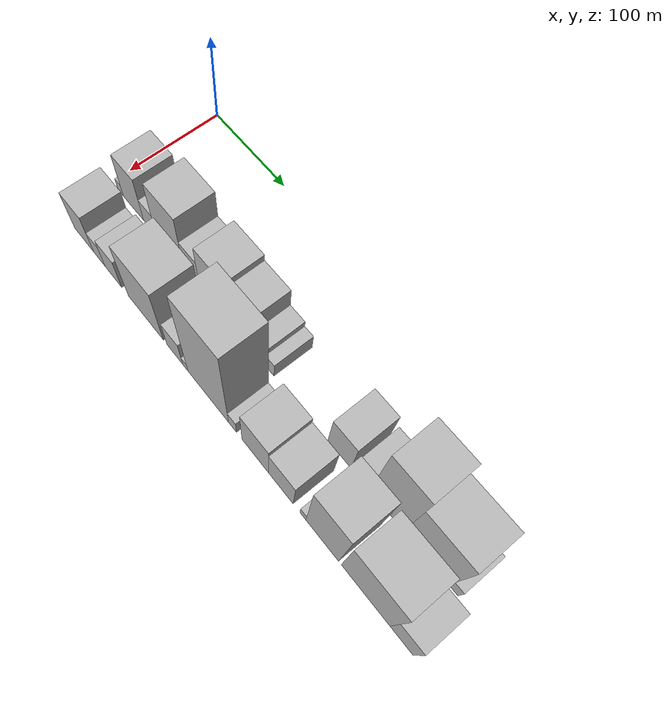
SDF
<sdf version="1.6">
 <world name="default">
  <model name="building_15">
   <static>1</static>
   <pose>100.0000 15.0990 0 0.000000 0.000000 0.000000</pose>
   <link name="link">
    <pose>0 0 9.00 0 0 0</pose>
    <collision name="collision"><geometry><box><size>40.0000 8.5355 18.0000</size></box></geometry></collision>
    <visual name="visual">
     <cast_shadows>0</cast_shadows>
     <geometry><box><size>40.0000 8.5355 18.0000</size></box></geometry>
     <material>
      <script>
       <uri>model://HANNAS_wall/materials/scripts</uri>
       <uri>model://HANNAS_wall/materials/textures</uri>
       <name>vrc/HANNAS_wall</name>
      </script>
     </material>
    </visual>
   </link>
  </model>
  <model name="building_16">
   <static>1</static>
   <pose>100.0000 35.2143 0 0.000000 0.000000 0.000000</pose>
   <link name="link">
    <pose>0 0 31.50 0 0 0</pose>
    <collision name="collision"><geometry><box><size>40.0000 31.6950 63.0000</size></box></geometry></collision>
    <visual name="visual">
     <cast_shadows>0</cast_shadows>
     <geometry><box><size>40.0000 31.6950 63.0000</size></box></geometry>
     <material>
      <script>
       <uri>model://HANNAS_wall/materials/scripts</uri>
       <uri>model://HANNAS_wall/materials/textures</uri>
       <name>vrc/HANNAS_wall</name>
      </script>
     </material>
    </visual>
   </link>
  </model>
  <model name="building_17">
   <static>1</static>
   <pose>100.0000 60.7238 0 0.000000 0.000000 0.000000</pose>
   <link name="link">
    <pose>0 0 16.50 0 0 0</pose>
    <collision name="collision"><geometry><box><size>40.0000 19.3241 33.0000</size></box></geometry></collision>
    <visual name="visual">
     <cast_shadows>0</cast_shadows>
     <geometry><box><size>40.0000 19.3241 33.0000</size></box></geometry>
     <material>
      <script>
       <uri>model://HANNAS_wall/materials/scripts</uri>
       <uri>model://HANNAS_wall/materials/textures</uri>
       <name>vrc/HANNAS_wall</name>
      </script>
     </material>
    </visual>
   </link>
  </model>
  <model name="building_18">
   <static>1</static>
   <pose>100.0000 90.9148 0 0.000000 0.000000 0.000000</pose>
   <link name="link">
    <pose>0 0 40.50 0 0 0</pose>
    <collision name="collision"><geometry><box><size>40.0000 41.0580 81.0000</size></box></geometry></collision>
    <visual name="visual">
     <cast_shadows>0</cast_shadows>
     <geometry><box><size>40.0000 41.0580 81.0000</size></box></geometry>
     <material>
      <script>
       <uri>model://HANNAS_wall/materials/scripts</uri>
       <uri>model://HANNAS_wall/materials/textures</uri>
       <name>vrc/HANNAS_wall</name>
      </script>
     </material>
    </visual>
   </link>
  </model>
  <model name="building_19">
   <static>1</static>
   <pose>100.0000 123.1200 0 0.000000 0.000000 0.000000</pose>
   <link name="link">
    <pose>0 0 22.50 0 0 0</pose>
    <collision name="collision"><geometry><box><size>40.0000 23.3524 45.0000</size></box></geometry></collision>
    <visual name="visual">
     <cast_shadows>0</cast_shadows>
     <geometry><box><size>40.0000 23.3524 45.0000</size></box></geometry>
     <material>
      <script>
       <uri>model://HANNAS_wall/materials/scripts</uri>
       <uri>model://HANNAS_wall/materials/textures</uri>
       <name>vrc/HANNAS_wall</name>
      </script>
     </material>
    </visual>
   </link>
  </model>
  <model name="building_20">
   <static>1</static>
   <pose>100.0000 154.1357 0 0.000000 0.000000 0.000000</pose>
   <link name="link">
    <pose>0 0 34.50 0 0 0</pose>
    <collision name="collision"><geometry><box><size>40.0000 38.6789 69.0000</size></box></geometry></collision>
    <visual name="visual">
     <cast_shadows>0</cast_shadows>
     <geometry><box><size>40.0000 38.6789 69.0000</size></box></geometry>
     <material>
      <script>
       <uri>model://HANNAS_wall/materials/scripts</uri>
       <uri>model://HANNAS_wall/materials/textures</uri>
       <name>vrc/HANNAS_wall</name>
      </script>
     </material>
    </visual>
   </link>
  </model>
  <model name="building_21">
   <static>1</static>
   <pose>100.0000 189.8916 0 0.000000 0.000000 0.000000</pose>
   <link name="link">
    <pose>0 0 30.00 0 0 0</pose>
    <collision name="collision"><geometry><box><size>40.0000 32.8330 60.0000</size></box></geometry></collision>
    <visual name="visual">
     <cast_shadows>0</cast_shadows>
     <geometry><box><size>40.0000 32.8330 60.0000</size></box></geometry>
     <material>
      <script>
       <uri>model://HANNAS_wall/materials/scripts</uri>
       <uri>model://HANNAS_wall/materials/textures</uri>
       <name>vrc/HANNAS_wall</name>
      </script>
     </material>
    </visual>
   </link>
  </model>
  <model name="building_22">
   <static>1</static>
   <pose>100.0000 215.5773 0 0.000000 0.000000 0.000000</pose>
   <link name="link">
    <pose>0 0 16.50 0 0 0</pose>
    <collision name="collision"><geometry><box><size>40.0000 18.5383 33.0000</size></box></geometry></collision>
    <visual name="visual">
     <cast_shadows>0</cast_shadows>
     <geometry><box><size>40.0000 18.5383 33.0000</size></box></geometry>
     <material>
      <script>
       <uri>model://HANNAS_wall/materials/scripts</uri>
       <uri>model://HANNAS_wall/materials/textures</uri>
       <name>vrc/HANNAS_wall</name>
      </script>
     </material>
    </visual>
   </link>
  </model>
  <model name="building_23">
   <static>1</static>
   <pose>100.0000 230.4463 0 0.000000 0.000000 0.000000</pose>
   <link name="link">
    <pose>0 0 12.00 0 0 0</pose>
    <collision name="collision"><geometry><box><size>40.0000 11.1996 24.0000</size></box></geometry></collision>
    <visual name="visual">
     <cast_shadows>0</cast_shadows>
     <geometry><box><size>40.0000 11.1996 24.0000</size></box></geometry>
     <material>
      <script>
       <uri>model://HANNAS_wall/materials/scripts</uri>
       <uri>model://HANNAS_wall/materials/textures</uri>
       <name>vrc/HANNAS_wall</name>
      </script>
     </material>
    </visual>
   </link>
  </model>
  <model name="building_24">
   <static>1</static>
   <pose>100.0000 317.1471 0 0.000000 0.000000 0.000000</pose>
   <link name="link">
    <pose>0 0 27.00 0 0 0</pose>
    <collision name="collision"><geometry><box><size>40.0000 27.4007 54.0000</size></box></geometry></collision>
    <visual name="visual">
     <cast_shadows>0</cast_shadows>
     <geometry><box><size>40.0000 27.4007 54.0000</size></box></geometry>
     <material>
      <script>
       <uri>model://HANNAS_wall/materials/scripts</uri>
       <uri>model://HANNAS_wall/materials/textures</uri>
       <name>vrc/HANNAS_wall</name>
      </script>
     </material>
    </visual>
   </link>
  </model>
  <model name="building_25">
   <static>1</static>
   <pose>100.0000 343.0963 0 0.000000 0.000000 0.000000</pose>
   <link name="link">
    <pose>0 0 18.00 0 0 0</pose>
    <collision name="collision"><geometry><box><size>40.0000 18.4977 36.0000</size></box></geometry></collision>
    <visual name="visual">
     <cast_shadows>0</cast_shadows>
     <geometry><box><size>40.0000 18.4977 36.0000</size></box></geometry>
     <material>
      <script>
       <uri>model://HANNAS_wall/materials/scripts</uri>
       <uri>model://HANNAS_wall/materials/textures</uri>
       <name>vrc/HANNAS_wall</name>
      </script>
     </material>
    </visual>
   </link>
  </model>
  <model name="building_26">
   <static>1</static>
   <pose>100.0000 371.6113 0 0.000000 0.000000 0.000000</pose>
   <link name="link">
    <pose>0 0 57.00 0 0 0</pose>
    <collision name="collision"><geometry><box><size>40.0000 38.5324 114.0000</size></box></geometry></collision>
    <visual name="visual">
     <cast_shadows>0</cast_shadows>
     <geometry><box><size>40.0000 38.5324 114.0000</size></box></geometry>
     <material>
      <script>
       <uri>model://HANNAS_wall/materials/scripts</uri>
       <uri>model://HANNAS_wall/materials/textures</uri>
       <name>vrc/HANNAS_wall</name>
      </script>
     </material>
    </visual>
   </link>
  </model>
  <model name="building_27">
   <static>1</static>
   <pose>100.0000 415.0386 0 0.000000 0.000000 0.000000</pose>
   <link name="link">
    <pose>0 0 43.50 0 0 0</pose>
    <collision name="collision"><geometry><box><size>40.0000 48.3222 87.0000</size></box></geometry></collision>
    <visual name="visual">
     <cast_shadows>0</cast_shadows>
     <geometry><box><size>40.0000 48.3222 87.0000</size></box></geometry>
     <material>
      <script>
       <uri>model://HANNAS_wall/materials/scripts</uri>
       <uri>model://HANNAS_wall/materials/textures</uri>
       <name>vrc/HANNAS_wall</name>
      </script>
     </material>
    </visual>
   </link>
  </model>
  <model name="building_28">
   <static>1</static>
   <pose>100.0000 444.0721 0 0.000000 0.000000 0.000000</pose>
   <link name="link">
    <pose>0 0 10.50 0 0 0</pose>
    <collision name="collision"><geometry><box><size>40.0000 9.7447 21.0000</size></box></geometry></collision>
    <visual name="visual">
     <cast_shadows>0</cast_shadows>
     <geometry><box><size>40.0000 9.7447 21.0000</size></box></geometry>
     <material>
      <script>
       <uri>model://HANNAS_wall/materials/scripts</uri>
       <uri>model://HANNAS_wall/materials/textures</uri>
       <name>vrc/HANNAS_wall</name>
      </script>
     </material>
    </visual>
   </link>
  </model>
  <model name="building_40">
   <static>1</static>
   <pose>152.0000 35.3569 0 0.000000 0.000000 0.000000</pose>
   <link name="link">
    <pose>0 0 28.50 0 0 0</pose>
    <collision name="collision"><geometry><box><size>40.0000 30.5609 57.0000</size></box></geometry></collision>
    <visual name="visual">
     <cast_shadows>0</cast_shadows>
     <geometry><box><size>40.0000 30.5609 57.0000</size></box></geometry>
     <material>
      <script>
       <uri>model://HANNAS_wall/materials/scripts</uri>
       <uri>model://HANNAS_wall/materials/textures</uri>
       <name>vrc/HANNAS_wall</name>
      </script>
     </material>
    </visual>
   </link>
  </model>
  <model name="building_41">
   <static>1</static>
   <pose>152.0000 59.5287 0 0.000000 0.000000 0.000000</pose>
   <link name="link">
    <pose>0 0 16.50 0 0 0</pose>
    <collision name="collision"><geometry><box><size>40.0000 17.7826 33.0000</size></box></geometry></collision>
    <visual name="visual">
     <cast_shadows>0</cast_shadows>
     <geometry><box><size>40.0000 17.7826 33.0000</size></box></geometry>
     <material>
      <script>
       <uri>model://HANNAS_wall/materials/scripts</uri>
       <uri>model://HANNAS_wall/materials/textures</uri>
       <name>vrc/HANNAS_wall</name>
      </script>
     </material>
    </visual>
   </link>
  </model>
  <model name="building_42">
   <static>1</static>
   <pose>152.0000 81.1383 0 0.000000 0.000000 0.000000</pose>
   <link name="link">
    <pose>0 0 22.50 0 0 0</pose>
    <collision name="collision"><geometry><box><size>40.0000 25.4367 45.0000</size></box></geometry></collision>
    <visual name="visual">
     <cast_shadows>0</cast_shadows>
     <geometry><box><size>40.0000 25.4367 45.0000</size></box></geometry>
     <material>
      <script>
       <uri>model://HANNAS_wall/materials/scripts</uri>
       <uri>model://HANNAS_wall/materials/textures</uri>
       <name>vrc/HANNAS_wall</name>
      </script>
     </material>
    </visual>
   </link>
  </model>
  <model name="building_43">
   <static>1</static>
   <pose>152.0000 129.4880 0 0.000000 0.000000 0.000000</pose>
   <link name="link">
    <pose>0 0 43.50 0 0 0</pose>
    <collision name="collision"><geometry><box><size>40.0000 51.2626 87.0000</size></box></geometry></collision>
    <visual name="visual">
     <cast_shadows>0</cast_shadows>
     <geometry><box><size>40.0000 51.2626 87.0000</size></box></geometry>
     <material>
      <script>
       <uri>model://HANNAS_wall/materials/scripts</uri>
       <uri>model://HANNAS_wall/materials/textures</uri>
       <name>vrc/HANNAS_wall</name>
      </script>
     </material>
    </visual>
   </link>
  </model>
  <model name="building_44">
   <static>1</static>
   <pose>152.0000 171.1954 0 0.000000 0.000000 0.000000</pose>
   <link name="link">
    <pose>0 0 21.00 0 0 0</pose>
    <collision name="collision"><geometry><box><size>40.0000 22.1522 42.0000</size></box></geometry></collision>
    <visual name="visual">
     <cast_shadows>0</cast_shadows>
     <geometry><box><size>40.0000 22.1522 42.0000</size></box></geometry>
     <material>
      <script>
       <uri>model://HANNAS_wall/materials/scripts</uri>
       <uri>model://HANNAS_wall/materials/textures</uri>
       <name>vrc/HANNAS_wall</name>
      </script>
     </material>
    </visual>
   </link>
  </model>
  <model name="building_45">
   <static>1</static>
   <pose>152.0000 185.9325 0 0.000000 0.000000 0.000000</pose>
   <link name="link">
    <pose>0 0 7.50 0 0 0</pose>
    <collision name="collision"><geometry><box><size>40.0000 7.3219 15.0000</size></box></geometry></collision>
    <visual name="visual">
     <cast_shadows>0</cast_shadows>
     <geometry><box><size>40.0000 7.3219 15.0000</size></box></geometry>
     <material>
      <script>
       <uri>model://HANNAS_wall/materials/scripts</uri>
       <uri>model://HANNAS_wall/materials/textures</uri>
       <name>vrc/HANNAS_wall</name>
      </script>
     </material>
    </visual>
   </link>
  </model>
  <model name="building_46">
   <static>1</static>
   <pose>152.0000 216.7526 0 0.000000 0.000000 0.000000</pose>
   <link name="link">
    <pose>0 0 72.00 0 0 0</pose>
    <collision name="collision"><geometry><box><size>40.0000 54.3182 144.0000</size></box></geometry></collision>
    <visual name="visual">
     <cast_shadows>0</cast_shadows>
     <geometry><box><size>40.0000 54.3182 144.0000</size></box></geometry>
     <material>
      <script>
       <uri>model://HANNAS_wall/materials/scripts</uri>
       <uri>model://HANNAS_wall/materials/textures</uri>
       <name>vrc/HANNAS_wall</name>
      </script>
     </material>
    </visual>
   </link>
  </model>
  <model name="building_47">
   <static>1</static>
   <pose>152.0000 249.0965 0 0.000000 0.000000 0.000000</pose>
   <link name="link">
    <pose>0 0 12.00 0 0 0</pose>
    <collision name="collision"><geometry><box><size>40.0000 10.3696 24.0000</size></box></geometry></collision>
    <visual name="visual">
     <cast_shadows>0</cast_shadows>
     <geometry><box><size>40.0000 10.3696 24.0000</size></box></geometry>
     <material>
      <script>
       <uri>model://HANNAS_wall/materials/scripts</uri>
       <uri>model://HANNAS_wall/materials/textures</uri>
       <name>vrc/HANNAS_wall</name>
      </script>
     </material>
    </visual>
   </link>
  </model>
  <model name="building_48">
   <static>1</static>
   <pose>152.0000 277.8902 0 0.000000 0.000000 0.000000</pose>
   <link name="link">
    <pose>0 0 31.50 0 0 0</pose>
    <collision name="collision"><geometry><box><size>40.0000 33.2176 63.0000</size></box></geometry></collision>
    <visual name="visual">
     <cast_shadows>0</cast_shadows>
     <geometry><box><size>40.0000 33.2176 63.0000</size></box></geometry>
     <material>
      <script>
       <uri>model://HANNAS_wall/materials/scripts</uri>
       <uri>model://HANNAS_wall/materials/textures</uri>
       <name>vrc/HANNAS_wall</name>
      </script>
     </material>
    </visual>
   </link>
  </model>
  <model name="building_49">
   <static>1</static>
   <pose>152.0000 309.4813 0 0.000000 0.000000 0.000000</pose>
   <link name="link">
    <pose>0 0 27.00 0 0 0</pose>
    <collision name="collision"><geometry><box><size>40.0000 29.9647 54.0000</size></box></geometry></collision>
    <visual name="visual">
     <cast_shadows>0</cast_shadows>
     <geometry><box><size>40.0000 29.9647 54.0000</size></box></geometry>
     <material>
      <script>
       <uri>model://HANNAS_wall/materials/scripts</uri>
       <uri>model://HANNAS_wall/materials/textures</uri>
       <name>vrc/HANNAS_wall</name>
      </script>
     </material>
    </visual>
   </link>
  </model>
  <model name="building_50">
   <static>1</static>
   <pose>152.0000 336.0698 0 0.000000 0.000000 0.000000</pose>
   <link name="link">
    <pose>0 0 7.50 0 0 0</pose>
    <collision name="collision"><geometry><box><size>40.0000 7.2123 15.0000</size></box></geometry></collision>
    <visual name="visual">
     <cast_shadows>0</cast_shadows>
     <geometry><box><size>40.0000 7.2123 15.0000</size></box></geometry>
     <material>
      <script>
       <uri>model://HANNAS_wall/materials/scripts</uri>
       <uri>model://HANNAS_wall/materials/textures</uri>
       <name>vrc/HANNAS_wall</name>
      </script>
     </material>
    </visual>
   </link>
  </model>
  <model name="building_51">
   <static>1</static>
   <pose>152.0000 358.5122 0 0.000000 0.000000 0.000000</pose>
   <link name="link">
    <pose>0 0 51.00 0 0 0</pose>
    <collision name="collision"><geometry><box><size>40.0000 37.6725 102.0000</size></box></geometry></collision>
    <visual name="visual">
     <cast_shadows>0</cast_shadows>
     <geometry><box><size>40.0000 37.6725 102.0000</size></box></geometry>
     <material>
      <script>
       <uri>model://HANNAS_wall/materials/scripts</uri>
       <uri>model://HANNAS_wall/materials/textures</uri>
       <name>vrc/HANNAS_wall</name>
      </script>
     </material>
    </visual>
   </link>
  </model>
  <model name="building_52">
   <static>1</static>
   <pose>152.0000 406.8783 0 0.000000 0.000000 0.000000</pose>
   <link name="link">
    <pose>0 0 45.00 0 0 0</pose>
    <collision name="collision"><geometry><box><size>40.0000 53.0596 90.0000</size></box></geometry></collision>
    <visual name="visual">
     <cast_shadows>0</cast_shadows>
     <geometry><box><size>40.0000 53.0596 90.0000</size></box></geometry>
     <material>
      <script>
       <uri>model://HANNAS_wall/materials/scripts</uri>
       <uri>model://HANNAS_wall/materials/textures</uri>
       <name>vrc/HANNAS_wall</name>
      </script>
     </material>
    </visual>
   </link>
  </model>
  <model name="building_53">
   <static>1</static>
   <pose>152.0000 445.4090 0 0.000000 0.000000 0.000000</pose>
   <link name="link">
    <pose>0 0 24.00 0 0 0</pose>
    <collision name="collision"><geometry><box><size>40.0000 24.0017 48.0000</size></box></geometry></collision>
    <visual name="visual">
     <cast_shadows>0</cast_shadows>
     <geometry><box><size>40.0000 24.0017 48.0000</size></box></geometry>
     <material>
      <script>
       <uri>model://HANNAS_wall/materials/scripts</uri>
       <uri>model://HANNAS_wall/materials/textures</uri>
       <name>vrc/HANNAS_wall</name>
      </script>
     </material>
    </visual>
   </link>
  </model>
 </world>
</sdf>
